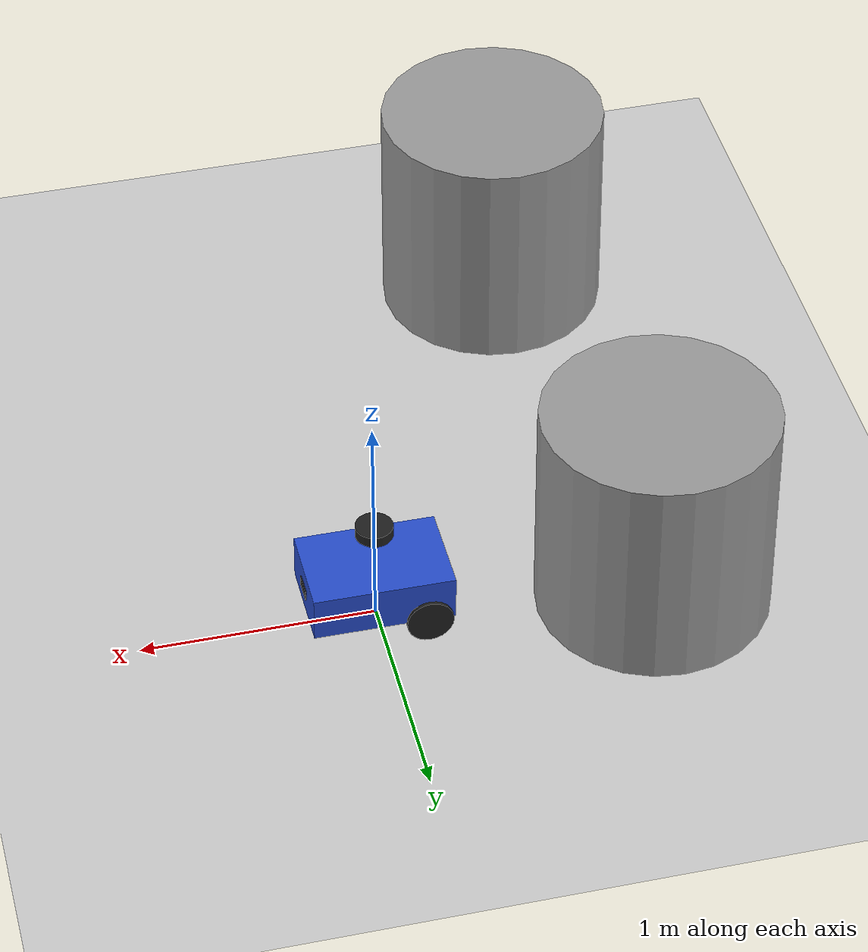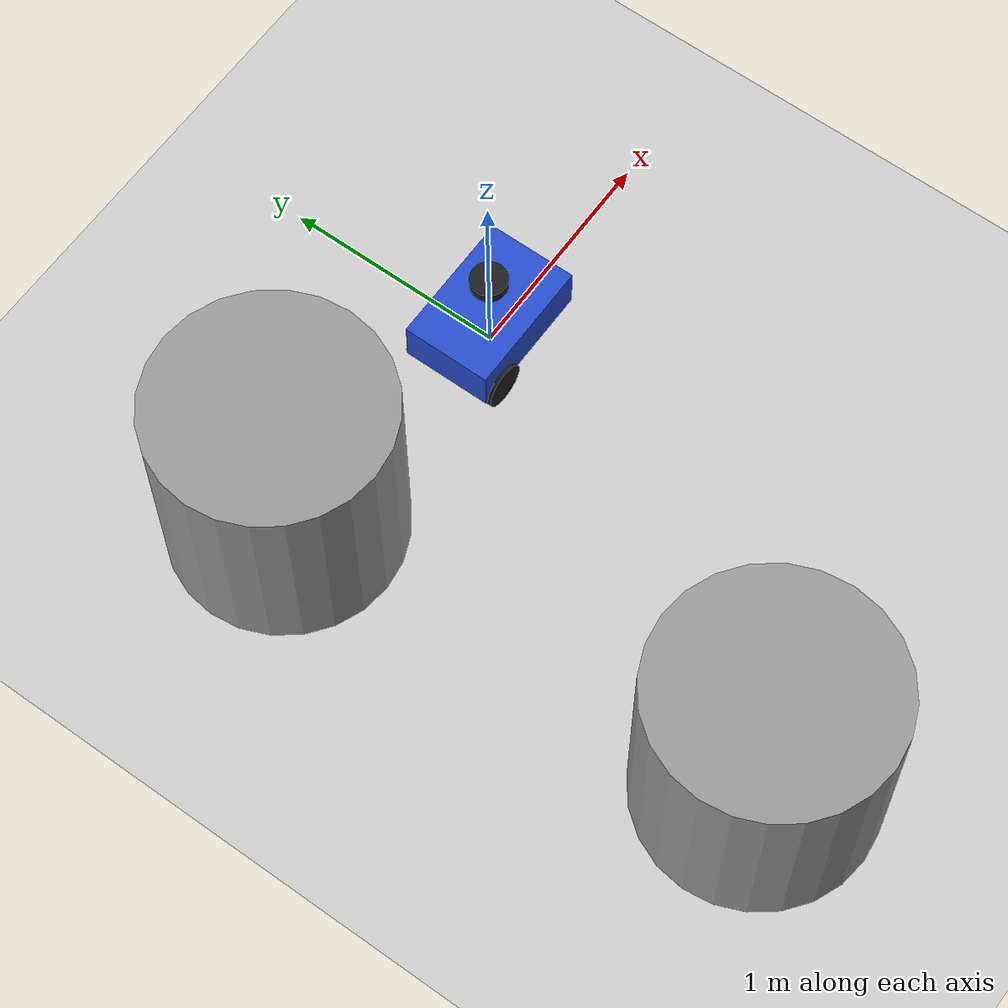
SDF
<sdf version="1.7">
 <world name="default">
  <light name="sun" type="directional">
   <pose>0 0 10 0 -0 0</pose>
   <diffuse>0.8 0.8 0.8 1</diffuse>
   <specular>0.2 0.2 0.2 1</specular>
   <attenuation>
    <range>1000</range>
    <constant>0.9</constant>
    <linear>0.01</linear>
    <quadratic>0.001</quadratic>
   </attenuation>
   <direction>-0.5 0.1 -0.9</direction>
   <spot><inner_angle>0</inner_angle><outer_angle>0</outer_angle><falloff>0</falloff></spot>
  </light>
  <model name="ground_plane">
   <static>1</static>
   <link name="link">
    <collision name="collision">
     <geometry><plane><normal>0 0 1</normal><size>100 100</size></plane></geometry>
     <surface><friction><ode><mu>100</mu><mu2>50</mu2></ode></friction></surface>
    </collision>
    <visual name="visual">
     <cast_shadows>0</cast_shadows>
     <geometry><plane><normal>0 0 1</normal><size>100 100</size></plane></geometry>
     <material>
      <script><uri>file://media/materials/scripts/gazebo.material</uri><name>Gazebo/Grey</name></script>
     </material>
    </visual>
   </link>
  </model>
  <gravity>0 0 -9.8</gravity>
  <magnetic_field>6e-06 2.3e-05 -4.2e-05</magnetic_field>
  <atmosphere type="adiabatic"/>
  <physics type="ode">
   <max_step_size>0.001</max_step_size>
   <real_time_factor>1</real_time_factor>
   <real_time_update_rate>1000</real_time_update_rate>
  </physics>
  <scene><ambient>0.4 0.4 0.4 1</ambient><background>0.7 0.7 0.7 1</background><shadows>1</shadows></scene>
  <audio><device>default</device></audio>
  <spherical_coordinates>
   <surface_model>EARTH_WGS84</surface_model>
   <latitude_deg>0</latitude_deg>
   <longitude_deg>0</longitude_deg>
   <elevation>0</elevation>
   <heading_deg>0</heading_deg>
  </spherical_coordinates>
  <model name="unit_cylinder">
   <pose>-1.16018 0.160411 0.499997 3e-06 4e-06 -0</pose>
   <link name="link">
    <inertial>
     <mass>1</mass>
     <inertia><ixx>0.145833</ixx><ixy>0</ixy><ixz>0</ixz><iyy>0.145833</iyy><iyz>0</iyz><izz>0.125</izz></inertia>
    </inertial>
    <collision name="collision">
     <geometry><cylinder><radius>0.5</radius><length>1</length></cylinder></geometry>
    </collision>
    <visual name="visual">
     <geometry><cylinder><radius>0.5</radius><length>1</length></cylinder></geometry>
     <material>
      <script><name>Gazebo/Grey</name><uri>file://media/materials/scripts/gazebo.material</uri></script>
     </material>
    </visual>
   </link>
  </model>
  <model name="unit_cylinder_clone_0">
   <pose>-0.999996 -2 0.499997 3e-06 4e-06 -0</pose>
   <link name="link">
    <inertial>
     <mass>1</mass>
     <inertia><ixx>0.145833</ixx><ixy>0</ixy><ixz>0</ixz><iyy>0.145833</iyy><iyz>0</iyz><izz>0.125</izz></inertia>
    </inertial>
    <collision name="collision">
     <geometry><cylinder><radius>0.5</radius><length>1</length></cylinder></geometry>
    </collision>
    <visual name="visual">
     <geometry><cylinder><radius>0.5</radius><length>1</length></cylinder></geometry>
     <material>
      <script><name>Gazebo/Grey</name><uri>file://media/materials/scripts/gazebo.material</uri></script>
     </material>
    </visual>
   </link>
  </model>
  <model name="my_robot">
   <link name="base_foot_link">
    <inertial>
     <pose>0.03871 0 0.197097 0 -0 0</pose>
     <mass>6.2</mass>
     <inertia>
      <ixx>0.311843</ixx>
      <ixy>0</ixy>
      <ixz>0.0120832</ixz>
      <iyy>0.947399</iyy>
      <iyz>0</iyz>
      <izz>0.674537</izz>
     </inertia>
    </inertial>
    <collision name="base_foot_link_fixed_joint_lump__base_link_collision">
     <pose>0 0 0.2 0 -0 0</pose>
     <geometry><box><size>0.6 0.4 0.2</size></box></geometry>
    </collision>
    <collision name="base_foot_link_fixed_joint_lump__camera_link_collision_1">
     <pose>0.3 0 0.2 0 -0 0</pose>
     <geometry><box><size>0.1 0.01 0.05</size></box></geometry>
    </collision>
    <collision name="base_foot_link_fixed_joint_lump__caster_wheel_link_collision_2">
     <pose>0.18 0 0.058 0 -0 0</pose>
     <geometry><sphere><radius>0.06</radius></sphere></geometry>
     <surface><friction><ode><mu>0.1</mu><mu2>0.1</mu2></ode></friction></surface>
    </collision>
    <collision name="base_foot_link_fixed_joint_lump__lidar_link_collision_3">
     <pose>0 0 0.465 0 -0 0</pose>
     <geometry><cylinder><length>0.05</length><radius>0.08</radius></cylinder></geometry>
    </collision>
    <visual name="base_foot_link_fixed_joint_lump__base_link_visual">
     <pose>0 0 0.2 0 -0 0</pose>
     <geometry><box><size>0.6 0.4 0.2</size></box></geometry>
     <material>
      <script><name>Gazebo/Blue</name><uri>file://media/materials/scripts/gazebo.material</uri></script>
     </material>
    </visual>
    <visual name="base_foot_link_fixed_joint_lump__camera_link_visual_1">
     <pose>0.3 0 0.2 0 -0 1.5708</pose>
     <geometry><box><size>0.1 0.01 0.05</size></box></geometry>
     <material>
      <script><name>Gazebo/Black</name><uri>file://media/materials/scripts/gazebo.material</uri></script>
     </material>
    </visual>
    <visual name="base_foot_link_fixed_joint_lump__caster_wheel_link_visual_2">
     <pose>0.18 0 0.058 0 -0 0</pose>
     <geometry><sphere><radius>0.06</radius></sphere></geometry>
     <material>
      <script><name>Gazebo/Black</name><uri>file://media/materials/scripts/gazebo.material</uri></script>
     </material>
    </visual>
    <visual name="base_foot_link_fixed_joint_lump__lidar_link_visual_3">
     <pose>0 0 0.465 0 -0 0</pose>
     <geometry><cylinder><length>0.05</length><radius>0.08</radius></cylinder></geometry>
     <material>
      <script><name>Gazebo/Black</name><uri>file://media/materials/scripts/gazebo.material</uri></script>
     </material>
    </visual>
    <sensor name="camera_sansor" type="camera">
     <visualize>1</visualize>
     <update_rate>10</update_rate>
     <plugin name="camera_controller" filename="libgazebo_ros_camera.so">
      <frame_name>camera_link</frame_name>
     </plugin>
     <pose>0.3 0 0.2 0 -0 0</pose>
     <camera>
      <horizontal_fov>1.047</horizontal_fov>
      <image><width>320</width><height>240</height></image>
      <clip><near>0.1</near><far>100</far></clip>
     </camera>
    </sensor>
    <sensor name="lidar_sensor" type="ray">
     <visualize>1</visualize>
     <update_rate>10</update_rate>
     <ray>
      <scan>
       <horizontal>
        <samples>720</samples>
        <resolution>1</resolution>
        <min_angle>-3.14</min_angle>
        <max_angle>3.14</max_angle>
       </horizontal>
       <vertical><samples>1</samples><min_angle>0</min_angle><max_angle>0</max_angle></vertical>
      </scan>
      <range><min>0.1</min><max>30</max><resolution>0.01</resolution></range>
     </ray>
     <plugin name="lidar" filename="libgazebo_ros_ray_sensor.so">
      <output_type>sensor_msgs/LaserScan</output_type>
     </plugin>
     <pose>0 0 0.465 0 -0 0</pose>
    </sensor>
   </link>
   <joint name="base_left_wheel_joint" type="revolute">
    <pose relative_to="base_foot_link">-0.19 0.19 0.1 0 -0 0</pose>
    <parent>base_foot_link</parent>
    <child>left_wheel_link</child>
    <axis>
     <xyz>0 1 0</xyz>
     <limit><lower>-1e+16</lower><upper>1e+16</upper></limit>
     <dynamics><spring_reference>0</spring_reference><spring_stiffness>0</spring_stiffness></dynamics>
    </axis>
   </joint>
   <link name="left_wheel_link">
    <pose relative_to="base_left_wheel_joint">0 0 0 0 -0 0</pose>
    <inertial>
     <pose>0 0 0 1.5708 -0 0</pose>
     <mass>1</mass>
     <inertia>
      <ixx>0.00270833</ixx>
      <ixy>0</ixy>
      <ixz>0</ixz>
      <iyy>0.00270833</iyy>
      <iyz>0</iyz>
      <izz>0.005</izz>
     </inertia>
    </inertial>
    <collision name="left_wheel_link_collision">
     <pose>0 0 0 1.5708 -0 0</pose>
     <geometry><cylinder><length>0.05</length><radius>0.1</radius></cylinder></geometry>
    </collision>
    <visual name="left_wheel_link_visual">
     <pose>0 0 0 1.5708 -0 0</pose>
     <geometry><cylinder><length>0.05</length><radius>0.1</radius></cylinder></geometry>
     <material>
      <script><name>Gazebo/Black</name><uri>file://media/materials/scripts/gazebo.material</uri></script>
     </material>
    </visual>
   </link>
   <joint name="base_right_wheel_joint" type="revolute">
    <pose relative_to="base_foot_link">-0.19 -0.19 0.1 0 -0 0</pose>
    <parent>base_foot_link</parent>
    <child>right_wheel_link</child>
    <axis>
     <xyz>0 1 0</xyz>
     <limit><lower>-1e+16</lower><upper>1e+16</upper></limit>
     <dynamics><spring_reference>0</spring_reference><spring_stiffness>0</spring_stiffness></dynamics>
    </axis>
   </joint>
   <link name="right_wheel_link">
    <pose relative_to="base_right_wheel_joint">0 0 0 0 -0 0</pose>
    <inertial>
     <pose>0 0 0 1.5708 -0 0</pose>
     <mass>1</mass>
     <inertia>
      <ixx>0.00270833</ixx>
      <ixy>0</ixy>
      <ixz>0</ixz>
      <iyy>0.00270833</iyy>
      <iyz>0</iyz>
      <izz>0.005</izz>
     </inertia>
    </inertial>
    <collision name="right_wheel_link_collision">
     <pose>0 0 0 1.5708 -0 0</pose>
     <geometry><cylinder><length>0.05</length><radius>0.1</radius></cylinder></geometry>
    </collision>
    <visual name="right_wheel_link_visual">
     <pose>0 0 0 1.5708 -0 0</pose>
     <geometry><cylinder><length>0.05</length><radius>0.1</radius></cylinder></geometry>
     <material>
      <script><name>Gazebo/Black</name><uri>file://media/materials/scripts/gazebo.material</uri></script>
     </material>
    </visual>
   </link>
   <static>0</static>
   <plugin name="diff_drive_controller" filename="libgazebo_ros_diff_drive.so">
    <update_rate>50</update_rate>
    <left_joint>base_left_wheel_joint</left_joint>
    <right_joint>base_right_wheel_joint</right_joint>
    <wheel_separation>0.45</wheel_separation>
    <wheel_diameter>0.2</wheel_diameter>
    <publish_odom>1</publish_odom>
    <publish_odom_tf>1</publish_odom_tf>
    <publish_wheel_tf>1</publish_wheel_tf>
    <odometry_topic>odom</odometry_topic>
    <odometry_frame>odom</odometry_frame>
    <robot_base_frame>base_foot_link</robot_base_frame>
   </plugin>
   <pose>0.00185 -0.000123 0.001028 0 -0.005404 -0.000529</pose>
  </model>
 </world>
</sdf>
